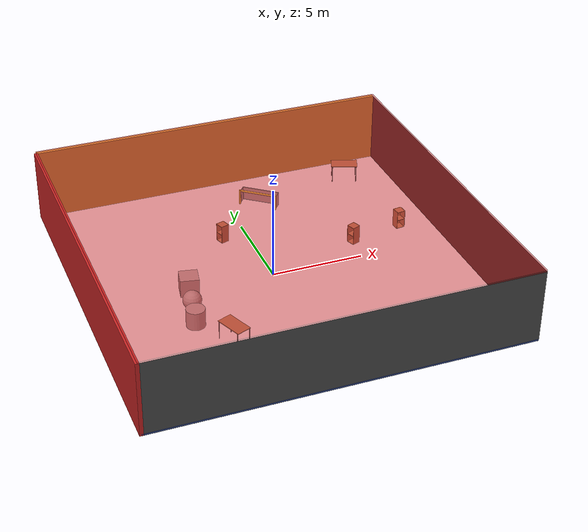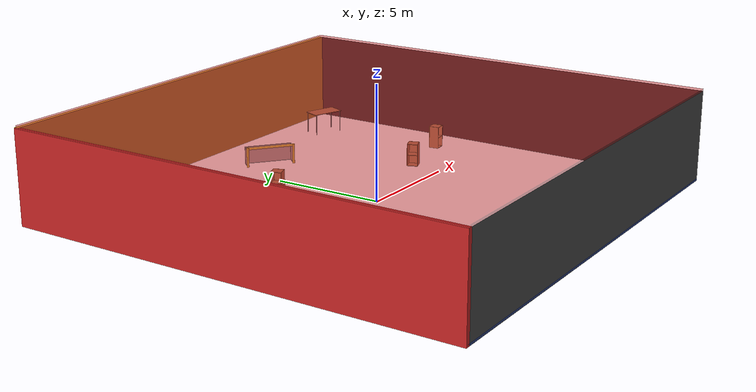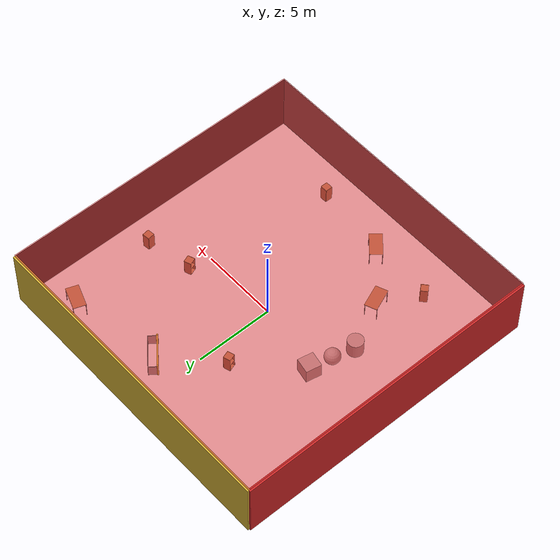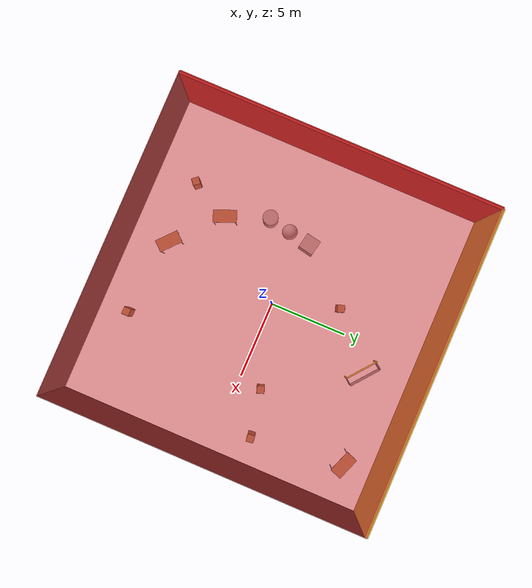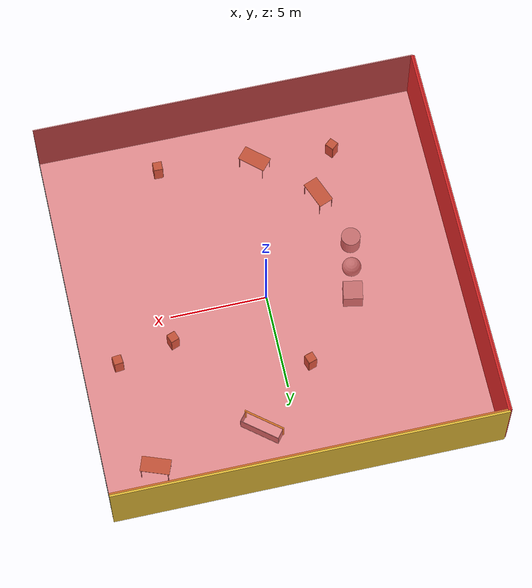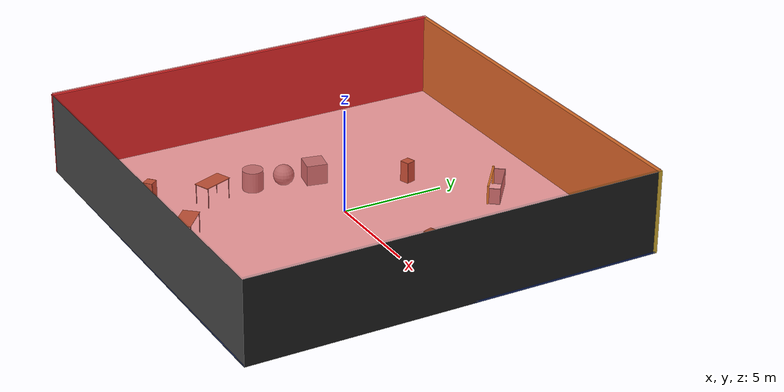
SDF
<sdf version="1.4">
 <world name="default">
  <physics type="ode">
   <max_step_size>0.001</max_step_size>
   <real_time_factor>1</real_time_factor>
   <real_time_update_rate>1000</real_time_update_rate>
   <gravity>0 0 -9.8</gravity>
  </physics>
  <scene><ambient>0.4 0.4 0.4 1</ambient><background>0.7 0.7 0.7 1</background><shadows>1</shadows></scene>
  <model name="Surrounding">
   <static>1</static>
   <link name="Ceiling">
    <collision name="Ceiling_Collision"><geometry><box><size>20 20 0.1</size></box></geometry></collision>
    <visual name="Ceiling_Visual">
     <geometry><box><size>20 20 0.1</size></box></geometry>
     <material>
      <script><uri>file://media/materials/scripts/gazebo.material</uri><name>Gazebo/RedTransparent</name></script>
     </material>
    </visual>
    <pose>0 0 4.05 0 0 0</pose>
   </link>
   <link name="Wall_South">
    <collision name="Wall_South_Collision">
     <geometry><box><size>20 0 4</size></box></geometry>
     <pose>0 0 2 0 -0 0</pose>
    </collision>
    <visual name="Wall_South_Visual">
     <pose>0 0 2 0 -0 0</pose>
     <geometry><box><size>20 0 4</size></box></geometry>
     <material>
      <script><uri>file://media/materials/scripts/gazebo.material</uri><name>Gazebo/Road</name></script>
     </material>
    </visual>
    <velocity_decay><linear>0</linear><angular>0</angular></velocity_decay>
    <pose>0 -10 0 0 -0 0</pose>
   </link>
   <link name="Wall_East">
    <collision name="Wall_21_Collision">
     <geometry><box><size>20 0 4</size></box></geometry>
     <pose>0 0 2 0 -0 0</pose>
    </collision>
    <visual name="Wall_21_Visual">
     <pose>0 0 2 0 -0 0</pose>
     <geometry><box><size>20 0 4</size></box></geometry>
     <material>
      <script><uri>file://media/materials/scripts/gazebo.material</uri><name>Gazebo/Black</name></script>
     </material>
    </visual>
    <velocity_decay><linear>0</linear><angular>0</angular></velocity_decay>
    <pose>10 0 0 0 -0 1.5708</pose>
   </link>
   <link name="Wall_North">
    <collision name="Wall_22_Collision">
     <geometry><box><size>20 0.2 4</size></box></geometry>
     <pose>0 0 2 0 -0 0</pose>
    </collision>
    <visual name="Wall_22_Visual">
     <pose>0 0 2 0 -0 0</pose>
     <geometry><box><size>20 0.2 4</size></box></geometry>
     <material>
      <script><uri>file://media/materials/scripts/gazebo.material</uri><name>Gazebo/Gold</name></script>
     </material>
    </visual>
    <velocity_decay><linear>0</linear><angular>0</angular></velocity_decay>
    <pose>0 10 0 0 -0 0</pose>
   </link>
   <link name="Wall_West">
    <collision name="Wall_23_Collision">
     <geometry><box><size>20 0.2 4</size></box></geometry>
     <pose>0 0 2 0 -0 0</pose>
    </collision>
    <visual name="Wall_23_Visual">
     <pose>0 0 2 0 -0 0</pose>
     <geometry><box><size>20 0.2 4</size></box></geometry>
     <material>
      <script><uri>file://media/materials/scripts/gazebo.material</uri><name>Gazebo/Red</name></script>
     </material>
    </visual>
    <velocity_decay><linear>0</linear><angular>0</angular></velocity_decay>
    <pose>-10 0 0 0 0 -1.5708</pose>
   </link>
   <link name="Ground_link">
    <collision name="collision">
     <pose>0 0 .05 0 -0 0</pose>
     <geometry><box><size>20 20 0.1</size></box></geometry>
    </collision>
    <visual name="visual">
     <pose>0 0 .05 0 -0 0</pose>
     <geometry><box><size>20 20 0.1</size></box></geometry>
     <material>
      <script><uri>file://media/materials/scripts/gazebo.material</uri><name>Gazebo/BlueTransparent</name></script>
     </material>
    </visual>
   </link>
   <static>1</static>
  </model>
  <spherical_coordinates>
   <surface_model>EARTH_WGS84</surface_model>
   <latitude_deg>0</latitude_deg>
   <longitude_deg>0</longitude_deg>
   <elevation>0</elevation>
   <heading_deg>0</heading_deg>
  </spherical_coordinates>
  <light name="lightball_0" type="diffuse">
   <diffuse>0.8 0.8 0.8 1</diffuse>
   <specular>0.2 0.2 0.2 1</specular>
   <attenuation>
    <range>100</range>
    <constant>0.7</constant>
    <linear>0.01</linear>
    <quadratic>0.001</quadratic>
   </attenuation>
   <direction>-0.5 0.1 -0.9</direction>
   <pose>6.50018611887 -0.609825195733 3.3003452582 0 0 0</pose>
  </light>
  <light name="lightball_1" type="diffuse">
   <diffuse>0.8 0.8 0.8 1</diffuse>
   <specular>0.2 0.2 0.2 1</specular>
   <attenuation>
    <range>100</range>
    <constant>0.7</constant>
    <linear>0.01</linear>
    <quadratic>0.001</quadratic>
   </attenuation>
   <direction>-0.5 0.1 -0.9</direction>
   <pose>-3.60012705561 5.89915923769 2.83494454091 0 0 0</pose>
  </light>
  <include><uri>model://cabinet</uri><pose>-5.14871458974 -7.35745762098 0 0 0 0.706432382721</pose></include>
  <include><uri>model://table</uri><pose>-3.83989396698 -4.81468622323 0 0 0 1.9484359787</pose></include>
  <include>
   <uri>model://textured_shapes</uri>
   <pose>-4.68170200221 -0.740812237092 0 0 0 2.94486557139</pose>
  </include>
  <include><uri>model://table</uri><pose>-1.02170838617 -7.40433364694 0 0 0 2.42091158144</pose></include>
  <include><uri>model://cabinet</uri><pose>-1.39333893053 4.07544749272 0 0 0 0.308962530531</pose></include>
  <include>
   <uri>model://robocup_3Dsim_goal</uri>
   <pose>1.61247546415 6.75879309728 0 0 0 0.897134772937</pose>
  </include>
  <include><uri>model://cabinet</uri><pose>4.00336231003 -8.08989756078 0 0 0 1.55900849155</pose></include>
  <include><uri>model://cabinet</uri><pose>5.17231937736 1.45932613793 0 0 0 0.349387655423</pose></include>
  <include><uri>model://cabinet</uri><pose>8.16062918456 2.06406079195 0 0 0 1.68685284635</pose></include>
  <include><uri>model://table</uri><pose>7.41227026534 7.98585253251 0 0 0 2.78657968916</pose></include>
 </world>
</sdf>

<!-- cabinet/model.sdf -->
<sdf version="1.5">
  <model name="cabinet">
    <static>true</static>
    <link name="cabinet_bottom_plate">
      <inertial>
        <pose>0 0 -1 0 0 0</pose>
        <inertia>
          <ixx>2.050000</ixx>
          <ixy>0</ixy>
          <ixz>0</ixz>
          <iyy>2.050000</iyy>
          <iyz>0</iyz>
          <izz>2.050000</izz>
        </inertia>
        <mass>25.000000</mass>
      </inertial>
      <collision name="cabinet_bottom_plate_geom">
        <pose>0 0 0.010000 0 0 0</pose>
        <geometry>
          <box>
            <size>0.450000 0.450000 0.020000</size>
          </box>
        </geometry>
      </collision>
      <visual name="cabinet_bottom_plate_geom_visual">
        <pose>0 0 0.010000 0 0 0</pose>
        <geometry>
          <box>
            <size>0.450000 0.450000 0.020000</size>
          </box>
        </geometry>
        <material>
          <script>
            <uri>model://media/materials/scripts/gazebo.material</uri>
            <name>Gazebo/Wood</name>
          </script>
        </material>
      </visual>
      <collision name="cabinet_bottom_plate_geom_cabinet_back_plate">
        <pose>0.235000 0 0.510000 0 0 0</pose>
        <geometry>
          <box>
            <size>0.020000 0.450000 1.020000</size>
          </box>
        </geometry>
      </collision>
      <visual name="cabinet_bottom_plate_geom_cabinet_back_plate_visual">
        <pose>0.235000 0 0.510000 0 0 0</pose>
        <geometry>
          <box>
            <size>0.020000 0.450000 1.020000</size>
          </box>
        </geometry>
        <material>
          <script>
            <uri>model://media/materials/scripts/gazebo.material</uri>
            <name>Gazebo/Wood</name>
          </script>
        </material>
      </visual>
      <collision name="cabinet_bottom_plate_geom_cabinet_left_plate">
        <pose>0 0.235000 0.510000 0 0 0</pose>
        <geometry>
          <box>
            <size>0.450000 0.020000 1.020000</size>
          </box>
        </geometry>
      </collision>
      <visual name="cabinet_bottom_plate_geom_cabinet_left_plate_visual">
        <pose>0 0.235000 0.510000 0 0 0</pose>
        <geometry>
          <box>
            <size>0.450000 0.020000 1.020000</size>
          </box>
        </geometry>
        <material>
          <script>
            <uri>model://media/materials/scripts/gazebo.material</uri>
            <name>Gazebo/Wood</name>
          </script>
        </material>
      </visual>
      <collision name="cabinet_bottom_plate_geom_cabinet_middle_plate">
        <pose>0 0 0.510000 0 0 0</pose>
        <geometry>
          <box>
            <size>0.450000 0.450000 0.020000</size>
          </box>
        </geometry>
      </collision>
      <visual name="cabinet_bottom_plate_geom_cabinet_middle_plate_visual">
        <pose>0 0 0.510000 0 0 0</pose>
        <geometry>
          <box>
            <size>0.450000 0.450000 0.020000</size>
          </box>
        </geometry>
        <material>
          <script>
            <uri>model://media/materials/scripts/gazebo.material</uri>
            <name>Gazebo/Wood</name>
          </script>
        </material>
      </visual>
      <collision name="cabinet_bottom_plate_geom_cabinet_right_plate">
        <pose>0 -0.235000 0.510000 0 0 0</pose>
        <geometry>
          <box>
            <size>0.450000 0.020000 1.020000</size>
          </box>
        </geometry>
      </collision>
      <visual name="cabinet_bottom_plate_geom_cabinet_right_plate_visual">
        <pose>0 -0.235000 0.510000 0 0 0</pose>
        <geometry>
          <box>
            <size>0.450000 0.020000 1.020000</size>
          </box>
        </geometry>
        <material>
          <script>
            <uri>model://media/materials/scripts/gazebo.material</uri>
            <name>Gazebo/Wood</name>
          </script>
        </material>
      </visual>
      <collision name="cabinet_bottom_plate_geom_cabinet_top_plate">
        <pose>0 0 1.010000 0 0 0</pose>
        <geometry>
          <box>
            <size>0.450000 0.450000 0.020000</size>
          </box>
        </geometry>
      </collision>
      <visual name="cabinet_bottom_plate_geom_cabinet_top_plate_visual">
        <pose>0 0 1.010000 0 0 0</pose>
        <geometry>
          <box>
            <size>0.450000 0.450000 0.020000</size>
          </box>
        </geometry>
        <material>
          <script>
            <uri>model://media/materials/scripts/gazebo.material</uri>
            <name>Gazebo/Wood</name>
          </script>
        </material>
      </visual>
    </link>
  </model>
</sdf>

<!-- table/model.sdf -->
<sdf version="1.5">
  <model name="table">
    <static>true</static>
    <link name="link">
      <collision name="surface">
        <pose>0 0 1.0 0 0 0</pose>
        <geometry>
          <box>
            <size>1.5 0.8 0.03</size>
          </box>
        </geometry>
        <surface>
          <friction>
            <ode>
              <mu>0.6</mu>
              <mu2>0.6</mu2>
            </ode>
          </friction>
        </surface>
      </collision>
      <visual name="visual1">
        <pose>0 0 1.0 0 0 0</pose>
        <geometry>
          <box>
            <size>1.5 0.8 0.03</size>
          </box>
        </geometry>
        <material>
          <script>
            <uri>model://media/materials/scripts/gazebo.material</uri>
            <name>Gazebo/Wood</name>
          </script>
        </material>
      </visual>
      <collision name="front_left_leg">
        <pose>0.68 0.38 0.5 0 0 0</pose>
        <geometry>
          <cylinder>
            <radius>0.02</radius>
            <length>1.0</length>
          </cylinder>
        </geometry>
      </collision>
      <visual name="front_left_leg">
        <pose>0.68 0.38 0.5 0 0 0</pose>
        <geometry>
          <cylinder>
            <radius>0.02</radius>
            <length>1.0</length>
          </cylinder>
        </geometry>
        <material>
          <script>
            <uri>model://media/materials/scripts/gazebo.material</uri>
            <name>Gazebo/Grey</name>
          </script>
        </material>
      </visual>
      <collision name="front_right_leg">
        <pose>0.68 -0.38 0.5 0 0 0</pose>
        <geometry>
          <cylinder>
            <radius>0.02</radius>
            <length>1.0</length>
          </cylinder>
        </geometry>
      </collision>
      <visual name="front_right_leg">
        <pose>0.68 -0.38 0.5 0 0 0</pose>
        <geometry>
          <cylinder>
            <radius>0.02</radius>
            <length>1.0</length>
          </cylinder>
        </geometry>
        <material>
          <script>
            <uri>model://media/materials/scripts/gazebo.material</uri>
            <name>Gazebo/Grey</name>
          </script>
        </material>
      </visual>
      <collision name="back_right_leg">
        <pose>-0.68 -0.38 0.5 0 0 0</pose>
        <geometry>
          <cylinder>
            <radius>0.02</radius>
            <length>1.0</length>
          </cylinder>
        </geometry>
      </collision>
      <visual name="back_right_leg">
        <pose>-0.68 -0.38 0.5 0 0 0</pose>
        <geometry>
          <cylinder>
            <radius>0.02</radius>
            <length>1.0</length>
          </cylinder>
        </geometry>
        <material>
          <script>
            <uri>model://media/materials/scripts/gazebo.material</uri>
            <name>Gazebo/Grey</name>
          </script>
        </material>
      </visual>
      <collision name="back_left_leg">
        <pose>-0.68 0.38 0.5 0 0 0</pose>
        <geometry>
          <cylinder>
            <radius>0.02</radius>
            <length>1.0</length>
          </cylinder>
        </geometry>
      </collision>
      <visual name="back_left_leg">
        <pose>-0.68 0.38 0.5 0 0 0</pose>
        <geometry>
          <cylinder>
            <radius>0.02</radius>
            <length>1.0</length>
          </cylinder>
        </geometry>
        <material>
          <script>
            <uri>model://media/materials/scripts/gazebo.material</uri>
            <name>Gazebo/Grey</name>
          </script>
        </material>
      </visual>
    </link>
  </model>
</sdf>

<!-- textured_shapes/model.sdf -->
<sdf version="1.6">
  <model name="textured_shapes">
    <pose>0 0 0.5 0 0 0</pose>
    <link name="box">
      <pose>0 -1.5 0 0 0 0</pose>
      <collision name="collision">
        <geometry>
          <box>
            <size>1 1 1</size>
          </box>
        </geometry>
      </collision>
      <visual name="visual">
        <geometry>
          <box>
            <size>1 1 1</size>
          </box>
        </geometry>
        <material>
          <script>
            <uri>model://../model_source/models/textured_shapes/materials/scripts</uri>
            <uri>model://../model_source/models/textured_shapes/materials/textures</uri>
            <name>TexturedShape/Squares</name>
          </script>
        </material>
      </visual>
    </link>
    <link name="sphere">
      <collision name="collision">
        <geometry>
          <sphere>
            <radius>0.5</radius>
          </sphere>
        </geometry>
      </collision>
      <visual name="visual">
        <geometry>
          <sphere>
            <radius>0.5</radius>
          </sphere>
        </geometry>
        <material>
          <script>
            <uri>model://../model_source/models/textured_shapes/materials/scripts</uri>
            <uri>model://../model_source/models/textured_shapes/materials/textures</uri>
            <name>TexturedShape/Squares</name>
          </script>
        </material>
      </visual>
    </link>
    <link name="cylinder">
      <pose>0 1.5 0 0 0 0</pose>
      <collision name="collision">
        <geometry>
          <cylinder>
            <radius>0.5</radius>
            <length>1</length>
          </cylinder>
        </geometry>
      </collision>
      <visual name="visual">
        <geometry>
          <cylinder>
            <radius>0.5</radius>
            <length>1</length>
          </cylinder>
        </geometry>
        <material>
          <script>
            <uri>model://../model_source/models/textured_shapes/materials/scripts</uri>
            <uri>model://../model_source/models/textured_shapes/materials/textures</uri>
            <name>TexturedShape/Squares</name>
          </script>
        </material>
      </visual>
    </link>
  </model>
</sdf>

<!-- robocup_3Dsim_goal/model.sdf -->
<sdf version="1.5">
  <model name="robocup_3d_goal">
    <static>true</static>
    <link name="left_post">
      <pose>0 1.05 0.45 0 0 0</pose>
      <collision name="collision">
        <geometry>
          <cylinder>
            <radius>0.05</radius>
            <length>0.9</length>
          </cylinder>
        </geometry>
      </collision>
      <visual name="visual">
        <geometry>
          <cylinder>
            <radius>0.05</radius>
            <length>0.9</length>
          </cylinder>
        </geometry>
        <material>
          <script>
            <uri>file://media/materials/scripts/gazebo.material</uri>
            <name>Gazebo/ZincYellow</name>
          </script>
        </material>
      </visual>
    </link>
    <link name="left_support_horiz_lower">
      <pose>0.30 1.05 0.01 0 0 0</pose>
      <collision name="collision">
        <geometry>
          <box>
            <size>0.50 0.02 0.02</size>
          </box>
        </geometry>
      </collision>
      <visual name="visual">
        <geometry>
          <box>
            <size>0.50 0.02 0.02</size>
          </box>
        </geometry>
        <material>
          <script>
            <uri>file://media/materials/scripts/gazebo.material</uri>
            <name>Gazebo/White</name>
          </script>
        </material>
      </visual>
    </link>
    <link name="left_support_horiz_upper">
      <pose>0.30 1.05 0.79 0 0 0</pose>
      <collision name="collision">
        <geometry>
          <box>
            <size>0.50 0.02 0.02</size>
          </box>
        </geometry>
      </collision>
      <visual name="visual">
        <geometry>
          <box>
            <size>0.50 0.02 0.02</size>
          </box>
        </geometry>
        <material>
          <script>
            <uri>file://media/materials/scripts/gazebo.material</uri>
            <name>Gazebo/White</name>
          </script>
        </material>
      </visual>
    </link>
    <link name="left_support_vertical">
      <pose>0.56 1.05 0.4 0 1.5708 0</pose>
      <collision name="collision">
        <geometry>
          <box>
            <size>0.80 0.02 0.02</size>
          </box>
        </geometry>
      </collision>
      <visual name="visual">
        <geometry>
          <box>
            <size>0.80 0.02 0.02</size>
          </box>
        </geometry>
        <material>
          <script>
            <uri>file://media/materials/scripts/gazebo.material</uri>
            <name>Gazebo/White</name>
          </script>
        </material>
      </visual>
    </link>
    <link name="right_support_horiz_lower">
      <pose>0.30 -1.05 0.01 0 0 0</pose>
      <collision name="collision">
        <geometry>
          <box>
            <size>0.50 0.02 0.02</size>
          </box>
        </geometry>
      </collision>
      <visual name="visual">
        <geometry>
          <box>
            <size>0.50 0.02 0.02</size>
          </box>
        </geometry>
        <material>
          <script>
            <uri>file://media/materials/scripts/gazebo.material</uri>
            <name>Gazebo/White</name>
          </script>
        </material>
      </visual>
    </link>
    <link name="right_support_horiz_upper">
      <pose>0.30 -1.05 0.79 0 0 0</pose>
      <collision name="collision">
        <geometry>
          <box>
            <size>0.50 0.02 0.02</size>
          </box>
        </geometry>
      </collision>
      <visual name="visual">
        <geometry>
          <box>
            <size>0.50 0.02 0.02</size>
          </box>
        </geometry>
        <material>
          <script>
            <uri>file://media/materials/scripts/gazebo.material</uri>
            <name>Gazebo/White</name>
          </script>
        </material>
      </visual>
    </link>
    <link name="right_support_vertical">
      <pose>0.56 -1.05 0.4 0 1.5708 0</pose>
      <collision name="collision">
        <geometry>
          <box>
            <size>0.80 0.02 0.02</size>
          </box>
        </geometry>
      </collision>
      <visual name="visual">
        <geometry>
          <box>
            <size>0.80 0.02 0.02</size>
          </box>
        </geometry>
        <material>
          <script>
            <uri>file://media/materials/scripts/gazebo.material</uri>
            <name>Gazebo/White</name>
          </script>
        </material>
      </visual>
    </link>
    <link name="center_support_horiz_lower">
      <pose>0.56 0 0.01 0 1.5708 0</pose>
      <collision name="collision">
        <geometry>
          <box>
            <size>0.02 2.08 0.02</size>
          </box>
        </geometry>
      </collision>
      <visual name="visual">
        <geometry>
          <box>
            <size>0.02 2.08 0.02</size>
          </box>
        </geometry>
        <material>
          <script>
            <uri>file://media/materials/scripts/gazebo.material</uri>
            <name>Gazebo/White</name>
          </script>
        </material>
      </visual>
    </link>
    <link name="center_support_horiz_upper">
      <pose>0.56 0 0.79 0 1.5708 0</pose>
      <collision name="collision">
        <geometry>
          <box>
            <size>0.02 2.08 0.02</size>
          </box>
        </geometry>
      </collision>
      <visual name="visual">
        <geometry>
          <box>
            <size>0.02 2.08 0.02</size>
          </box>
        </geometry>
        <material>
          <script>
            <uri>file://media/materials/scripts/gazebo.material</uri>
            <name>Gazebo/White</name>
          </script>
        </material>
      </visual>
    </link>
    <link name="right_post">
      <pose>0 -1.05 0.45 0 0 0</pose>
      <collision name="collision">
        <geometry>
          <cylinder>
            <radius>0.05</radius>
            <length>0.9</length>
          </cylinder>
        </geometry>
      </collision>
      <visual name="visual">
        <geometry>
          <cylinder>
            <radius>0.05</radius>
            <length>0.9</length>
          </cylinder>
        </geometry>
        <material>
          <script>
            <uri>file://media/materials/scripts/gazebo.material</uri>
            <name>Gazebo/ZincYellow</name>
          </script>
        </material>
      </visual>
    </link>
    <link name="crossbar">
      <pose>0 0 0.85 1.57 1.57 0</pose>
      <collision name="collision">
        <geometry>
          <cylinder>
            <radius>0.05</radius>
            <length>2.0</length>
          </cylinder>
        </geometry>
      </collision>
      <visual name="visual">
        <geometry>
          <cylinder>
            <radius>0.05</radius>
            <length>2.0</length>
          </cylinder>
        </geometry>
        <material>
          <script>
            <uri>file://media/materials/scripts/gazebo.material</uri>
            <name>Gazebo/ZincYellow</name>
          </script>
        </material>
      </visual>
    </link>
    <link name="center_net">
      <pose>0.56 0 0.40 0 0 0</pose>
      <collision name="collision">
        <geometry>
          <box>
            <size>0.01 2.1 0.80</size>
          </box>
        </geometry>
      </collision>
      <visual name="visual">
        <geometry>
          <box>
            <size>0.01 2.1 0.80</size>
          </box>
        </geometry>
        <material>
          <script>
            <uri>model://../model_source/models/robocup09_spl_field/materials/scripts/</uri>
            <uri>model://../model_source/models/robocup09_spl_field/materials/textures/</uri>
            <name>RoboCup/Net</name>
          </script>
        </material>
      </visual>
    </link>
    <link name="left_net">
      <pose>0.30 1.05 0.40 0 0 0</pose>
      <collision name="collision">
        <geometry>
          <box>
            <size>0.50 0.01 0.76</size>
          </box>
        </geometry>
      </collision>
      <visual name="visual">
        <geometry>
          <box>
            <size>0.50 0.01 0.76</size>
          </box>
        </geometry>
        <material>
          <script>
            <uri>model://../model_source/models/robocup09_spl_field/materials/scripts/</uri>
            <uri>model://../model_source/models/robocup09_spl_field/materials/textures/</uri>
            <name>RoboCup/Net</name>
          </script>
        </material>
      </visual>
    </link>
    <link name="right_net">
      <pose>0.30 -1.05 0.40 0 0 0</pose>
      <collision name="collision">
        <geometry>
          <box>
            <size>0.50 0.01 0.76</size>
          </box>
        </geometry>
      </collision>
      <visual name="visual">
        <geometry>
          <box>
            <size>0.50 0.01 0.76</size>
          </box>
        </geometry>
        <material>
          <script>
            <uri>model://../model_source/models/robocup09_spl_field/materials/scripts/</uri>
            <uri>model://../model_source/models/robocup09_spl_field/materials/textures/</uri>
            <name>RoboCup/Net</name>
          </script>
        </material>
      </visual>
    </link>
  </model>
</sdf>
